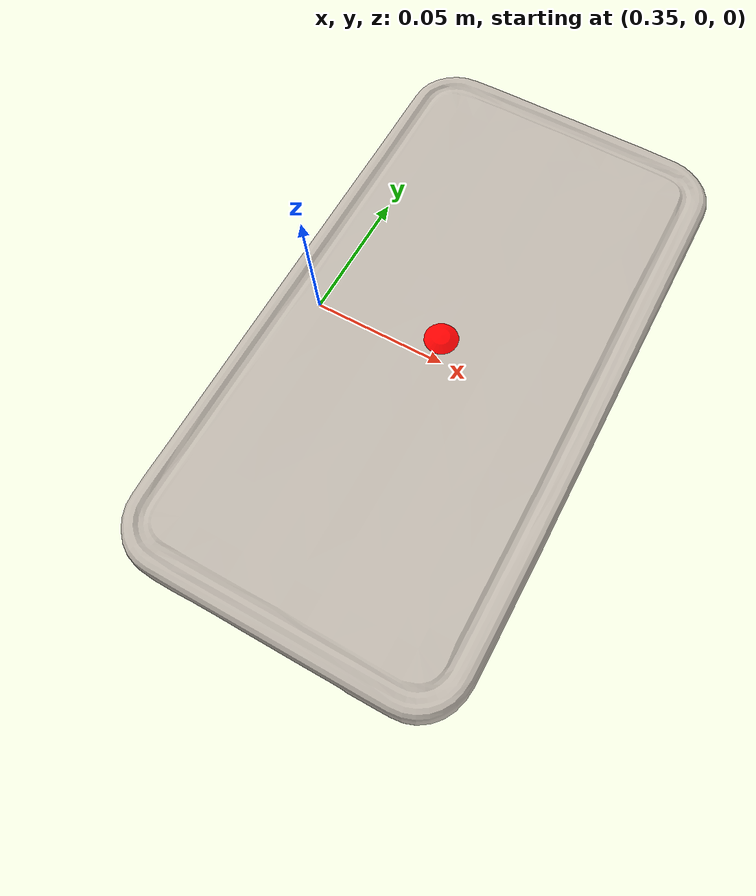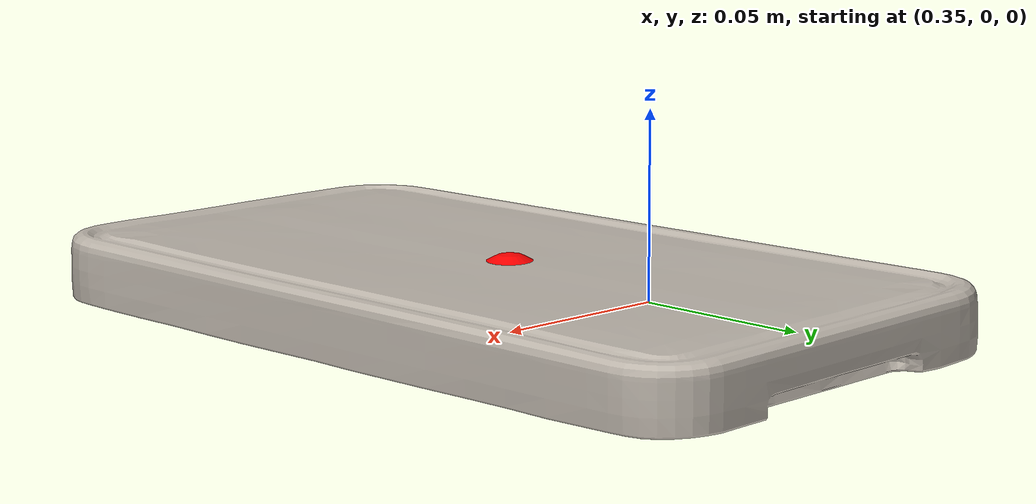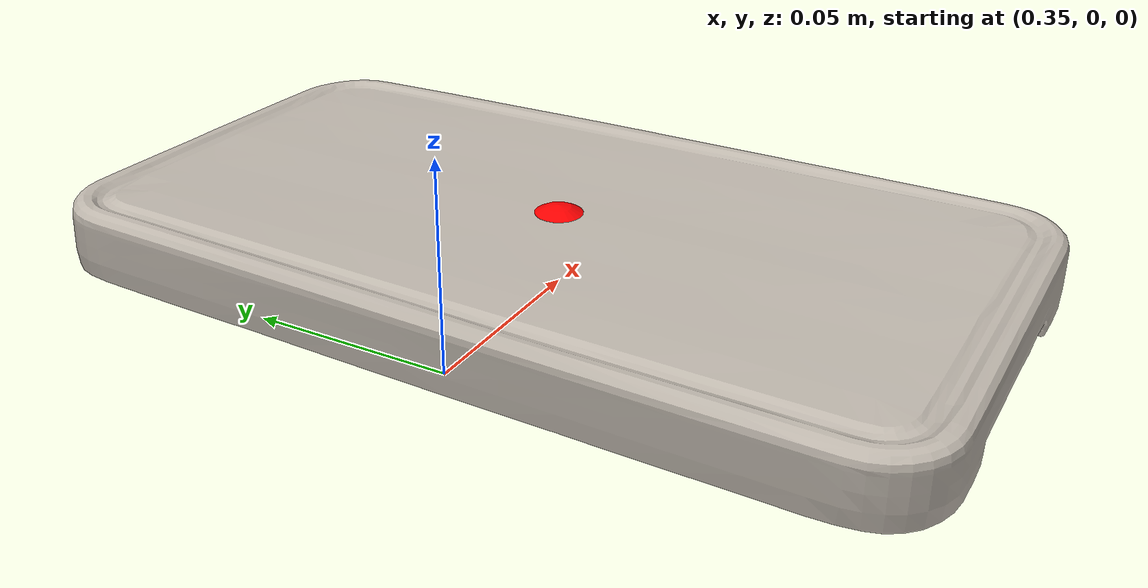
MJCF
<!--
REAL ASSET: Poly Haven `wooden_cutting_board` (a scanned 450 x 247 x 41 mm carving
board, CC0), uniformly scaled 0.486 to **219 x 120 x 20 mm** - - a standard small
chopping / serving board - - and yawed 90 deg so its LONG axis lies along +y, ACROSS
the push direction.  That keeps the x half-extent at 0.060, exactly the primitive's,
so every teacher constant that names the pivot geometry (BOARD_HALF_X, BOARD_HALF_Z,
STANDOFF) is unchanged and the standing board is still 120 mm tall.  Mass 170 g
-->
<?xml version="1.0"?>
<mujoco model="board">
  <compiler angle="radian" meshdir="assets" texturedir="assets"/>

  <asset>
    <texture name="board_tex" type="2d" file="board_tex.png"/>
    <material name="board_mat" texture="board_tex" specular="0.15" shininess="0.15"/>
    <mesh name="board_vis" file="board_vis.obj"/>
  </asset>

  <worldbody>
    <body name="board" pos="0.40 0 0.0101">
      <freejoint name="board_joint"/>
      <inertial pos="0.00009 0.00016 -0.00042" quat="0.705468 -0.000689 0.003909 -0.708731" mass="0.17000" diaginertia="1.978e-04 6.536e-04 8.423e-04"/>
      <geom name="board_visual" type="mesh" mesh="board_vis" material="board_mat" contype="0" conaffinity="0" group="2" mass="0"/>
      <geom name="board_geom" type="box" pos="0.0000 0.0000 0.0000" size="0.0600 0.1094 0.0100" group="3" rgba="0.5 0.5 0.5 0.3" condim="3" friction="0.7 0.03 0.003" contype="1" conaffinity="1" solref="0.01 1" mass="0"/>
      <site name="object_site" pos="0 0 0" size="0.01" rgba="1 0 0 1"/>
    </body>
  </worldbody>
</mujoco>
